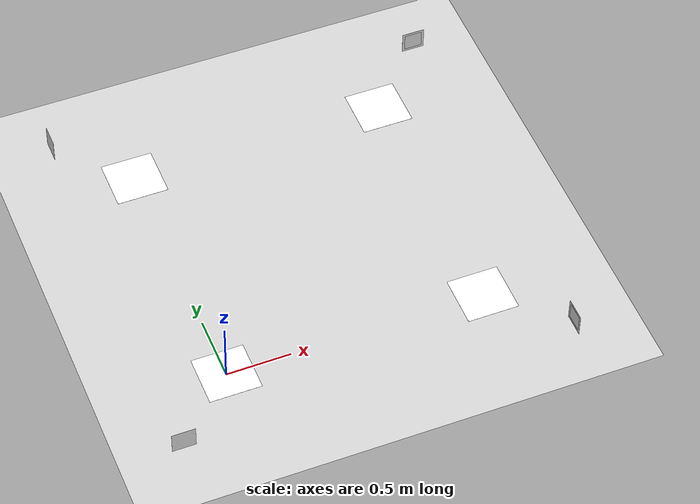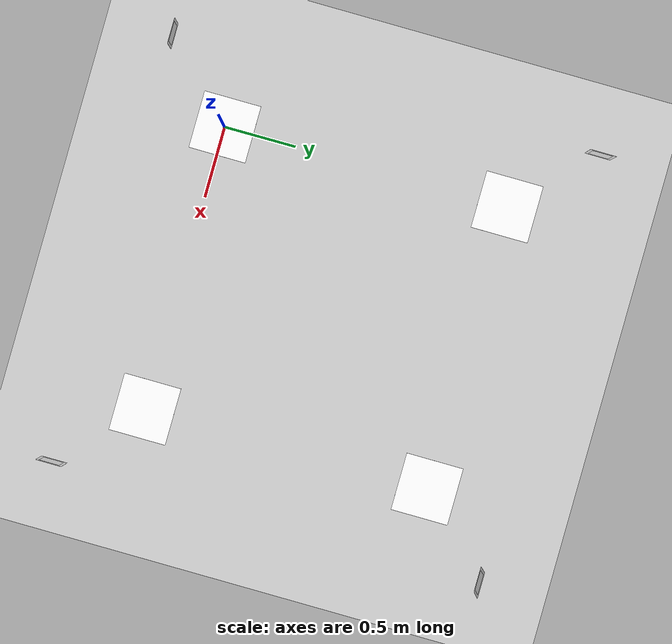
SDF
<sdf version="1.4">
  <world name="default">

    <physics name="1ms" type="ignored">
      <max_step_size>0.001</max_step_size>
      <real_time_factor>1.0</real_time_factor>
    </physics>
    <plugin
      filename="gz-sim-physics-system"
      name="gz::sim::systems::Physics">
    </plugin>
    <plugin
      filename="gz-sim-user-commands-system"
      name="gz::sim::systems::UserCommands">
    </plugin>
    <plugin
      filename="gz-sim-scene-broadcaster-system"
      name="gz::sim::systems::SceneBroadcaster">
    </plugin>

    <plugin
        filename="gz-sim-sensors-system"
        name="gz::sim::systems::Sensors">
        <render_engine>ogre2</render_engine>
    </plugin>

    <scene>
      <ambient>0 0 0 1</ambient>
      <background>0.7 0.7 0.7 1</background>
      <shadows>0</shadows>
    </scene>

    <!-- Arena lights -->
    <include>
      <uri>model://simple_light</uri>
    </include>

      <light name='point_light_0' type='point'>
        <pose frame=''>1 -1 1 0 0 0</pose>
        <diffuse>0.5 0.5 0.5 1</diffuse>
        <specular>0.3 0.3 0.3 1</specular>
        <attenuation>
          <range>20</range>
          <constant>0.5</constant>
          <linear>0.01</linear>
          <quadratic>0.001</quadratic>
        </attenuation>
        <cast_shadows>0</cast_shadows>
        <direction>-0.3 0.3 -1</direction>
    </light>

    <light name='point_light_1' type='point'>
      <pose frame=''>-1 1 1 0 0 0</pose>
      <diffuse>0.5 0.5 0.5 1</diffuse>
      <specular>0.3 0.3 0.3 1</specular>
      <attenuation>
        <range>20</range>
        <constant>0.5</constant>
        <linear>0.01</linear>
        <quadratic>0.001</quadratic>
      </attenuation>
      <cast_shadows>0</cast_shadows>
      <direction>0.3 -0.3 -1</direction>
    </light>

    <!-- An empty plane -->

        <!-- Puzzlebot wood plane -->
    <include>
      <uri>model://puzzlebot_base</uri>
    </include>

    <include>
      <name>marker_0</name>
      <uri>model://aruco_marker_0</uri>
      <pose>2.5 -0.5 0.091 0 0 3.141592654</pose>
    </include>

    <include>
      <name>marker_1</name>
      <uri>model://aruco_marker_1</uri>
      <pose>2.5 2.5 0.091 0 0 4.7123</pose>
    </include>

    <include>
      <name>marker_2</name>
      <uri>model://aruco_marker_2</uri>
      <pose>-0.5 2.5 0.091 0 0 0</pose>
    </include>

    <include>
      <name>marker_3</name>
      <uri>model://aruco_marker_3</uri>
      <pose>-0.5 -0.5 0.091 0 0 1.5708</pose>
    </include>

    <include>
      <name>goal_1</name>
      <uri>model://goal_marker_5</uri>
      <pose>0 0 0.01 0 0 0</pose>
    </include>

    <include>
      <name>goal_2</name>
      <uri>model://goal_marker_5</uri>
      <pose>2 0 0.01 0 0 0</pose>
    </include>

    <include>
      <name>goal_3</name>
      <uri>model://goal_marker_5</uri>
      <pose>2 2 0.01 0 0 0</pose>
    </include>

    <include>
      <name>goal_4</name>
      <uri>model://goal_marker_5</uri>
      <pose>0 2 0.01 0 0 0</pose>
    </include>

  </world>
</sdf>

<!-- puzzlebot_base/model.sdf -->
<sdf version="1.9">
    <model name="puzzlebot_base">
        <static>true</static>
        <link name="link">
            <collision name="collision">
                <geometry>
                    <plane>
                        <normal>0 0 1</normal>
                        <size>10.0 10.0</size>
                    </plane>
                </geometry>
                <surface>
                    <contact>
                        <collide_bitmask>0xffff</collide_bitmask>
                    </contact>
                    <friction>
                        <ode>
                            <mu>100</mu>
                            <mu2>50</mu2>
                        </ode>
                    </friction>
                </surface>
            </collision>

            <visual name="puzzlebot_visual">
                <pose>0 0 0.001 0 0 0</pose>
                <cast_shadows>false</cast_shadows>
                <geometry>
                    <plane>
                        <normal>0 0 1</normal>
                        <size>8.0 8.0</size>
                    </plane>
                </geometry>

                <material>
                    <ambient>0.8 0.8 0.8 1</ambient>
                    <diffuse>0.8 0.8 0.8 1</diffuse>
                    <specular>1 0.8 0.8 1</specular>
                    <pbr>
                        <metal>
                        <albedo_map>model://puzzlebot_base/materials/textures/puzzlebot_wood_6.png</albedo_map>
                        <normal_map>model://puzzlebot_base/materials/textures/puzzlebot_wood_6.png</normal_map>
                        </metal>
                    </pbr>
                </material>
            </visual>
        </link>
    </model>
</sdf>

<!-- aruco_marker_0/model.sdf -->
<sdf version="1.5">
    <model name='aruco_marker_1'>
    <pose>0 0 0 0 0 0</pose>
    <static>true</static>
        <link name='link'>
            <inertial>
                <pose>0 0 0 0 -0 0</pose>
                <mass>0.281</mass>
                <inertia>
                    <ixx>0.0006167</ixx>
                    <ixy>0</ixy>
                    <ixz>0</ixz>
                    <iyy>0.0006167</iyy>
                    <iyz>0</iyz>
                    <izz>0.0006167</izz>
                </inertia>
            </inertial>
            <collision name="collision">
                <geometry>
                    <box>
                        <size>0.001 0.18 0.18</size>
                    </box>
                </geometry>
                <surface>
                    <contact>
                        <ode>
                            <max_vel>1</max_vel>
                            <min_depth>0.001</min_depth>
                            <kp>1000000</kp>
                            <kd>10</kd>
                        </ode>
                    </contact>
                    <friction>
                        <ode>
                            <mu>1</mu>
                            <mu2>1</mu2>
                        </ode>
                    </friction>
                </surface>
            </collision>

            <visual name='box_visual'>
                <cast_shadows>0</cast_shadows>
                    <geometry>
                        <box>
                            <size>0.001 0.18 0.18</size>
                        </box>
                    </geometry>
                <material>
                    <ambient>1 1 1 1</ambient>
                    <diffuse>1 1 1 1</diffuse>
                    <specular>1 1 1 1</specular>
                    <emissive>0.6 0.6 0.6 1</emissive>
                </material>
            </visual>

            <visual name='aruco_visual1'>
                <cast_shadows>0</cast_shadows>
                <pose>0.00065 0.0 0.0 1.5708 0.0 1.5708</pose>
                <geometry>
                    <plane>
                        <normal>0 0 1</normal>
                        <size>0.14 0.14</size>
                    </plane>
                </geometry>
                <material>
                    <pbr>
                        <metal>
                            <albedo_map>model://aruco_marker_0/materials/textures/marker0.png</albedo_map>
                            <normal_map>model://aruco_marker_0/materials/textures/marker0.png</normal_map>
                        </metal>
                    </pbr>
                    <ambient>1 1 1 1</ambient>
                    <diffuse>1 1 1 1</diffuse>
                    <specular>1 1 1 1</specular>
                    <emissive>0.0 0.0 0.0 1</emissive>
                </material>
            </visual>

        </link>
    </model>
</sdf>

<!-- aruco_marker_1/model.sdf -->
<sdf version="1.5">

    <model name='aruco_marker_2'>
        <pose>0 0 0 0 0 0</pose>
        <static>true</static>
        <link name='link'>
            <inertial>
                <pose>0 0 0 0 -0 0</pose>
                <mass>0.281</mass>
                <inertia>
                    <ixx>0.0006167</ixx>
                    <ixy>0</ixy>
                    <ixz>0</ixz>
                    <iyy>0.0006167</iyy>
                    <iyz>0</iyz>
                    <izz>0.0006167</izz>
                </inertia>
            </inertial>
            <collision name="collision">
                <geometry>
                    <box>
                        <size>0.001 0.18 0.18</size>
                    </box>
                </geometry>
                <surface>
                    <contact>
                        <ode>
                            <max_vel>1</max_vel>
                            <min_depth>0.001</min_depth>
                            <kp>1000000</kp>
                            <kd>10</kd>
                        </ode>
                    </contact>
                    <friction>
                        <ode>
                            <mu>1</mu>
                            <mu2>1</mu2>
                        </ode>
                    </friction>
                </surface>
            </collision>

            <visual name='box_visual'>
                <cast_shadows>0</cast_shadows>
                    <geometry>
                        <box>
                            <size>0.001 0.18 0.18</size>
                        </box>
                    </geometry>
                    <material>
                    <ambient>1 1 1 1</ambient>
                    <diffuse>1 1 1 1</diffuse>
                    <specular>1 1 1 1</specular>
                    <emissive>0.6 0.6 0.6 1</emissive>
                </material>
            </visual>

            <visual name='aruco_visual1'>
                <cast_shadows>0</cast_shadows>
                <pose>0.00065 0.0 0.0 1.5708 0.0 1.5708</pose>
                <geometry>
                    <plane>
                        <normal>0 0 1</normal>
                        <size>0.14 0.14</size>
                    </plane>
                </geometry>
                <material>
                    <pbr>
                        <metal>
                            <albedo_map>model://aruco_marker_1/materials/textures/marker1.png</albedo_map>
                            <normal_map>model://aruco_marker_1/materials/textures/marker1.png</normal_map>
                        </metal>
                    </pbr>
                    <ambient>1 1 1 1</ambient>
                    <diffuse>1 1 1 1</diffuse>
                    <specular>1 1 1 1</specular>
                    <emissive>0.0 0.0 0.0 1</emissive>
                </material>
            </visual>

        </link>
    </model>
</sdf>

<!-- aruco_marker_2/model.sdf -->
<sdf version="1.5">

    <model name='aruco_marker_3'>
        <pose>0 0 0 0 0 0</pose>
        <static>true</static>
        <link name='link'>
            <inertial>
                <pose>0 0 0 0 -0 0</pose>
                <mass>0.281</mass>
                <inertia>
                    <ixx>0.0006167</ixx>
                    <ixy>0</ixy>
                    <ixz>0</ixz>
                    <iyy>0.0006167</iyy>
                    <iyz>0</iyz>
                    <izz>0.0006167</izz>
                </inertia>
            </inertial>
            <collision name="collision">
                <geometry>
                    <box>
                        <size>0.001 0.18 0.18</size>
                    </box>
                </geometry>
                <surface>
                    <contact>
                        <ode>
                            <max_vel>1</max_vel>
                            <min_depth>0.001</min_depth>
                            <kp>1000000</kp>
                            <kd>10</kd>
                        </ode>
                    </contact>
                    <friction>
                        <ode>
                            <mu>1</mu>
                            <mu2>1</mu2>
                        </ode>
                    </friction>
                </surface>
            </collision>

            <visual name='box_visual'>
                <cast_shadows>0</cast_shadows>
                    <geometry>
                        <box>
                            <size>0.001 0.18 0.18</size>
                        </box>
                    </geometry>
                <material>
                    <ambient>1 1 1 1</ambient>
                    <diffuse>1 1 1 1</diffuse>
                    <specular>1 1 1 1</specular>
                    <emissive>0.6 0.6 0.6 1</emissive>
                </material>
            </visual>

            <visual name='aruco_visual1'>
                <cast_shadows>0</cast_shadows>
                <pose>0.00065 0.0 0.0 1.5708 0.0 1.5708</pose>
                <geometry>
                    <plane>
                        <normal>0 0 1</normal>
                        <size>0.14 0.14</size>
                    </plane>
                </geometry>
                <material>
                    <pbr>
                        <metal>
                            <albedo_map>model://aruco_marker_2/materials/textures/marker2.png</albedo_map>
                            <normal_map>model://aruco_marker_2/materials/textures/marker2.png</normal_map>
                        </metal>
                    </pbr>
                    <ambient>1 1 1 1</ambient>
                    <diffuse>1 1 1 1</diffuse>
                    <specular>1 1 1 1</specular>
                    <emissive>0.0 0.0 0.0 1</emissive>
                </material>
            </visual>

        </link>
    </model>
</sdf>

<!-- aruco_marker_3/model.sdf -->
<sdf version="1.5">

    <model name='aruco_marker_4'>
        <pose>0 0 0 0 0 0</pose>
        <static>true</static>
        <link name='link'>
            <inertial>
                <pose>0 0 0 0 -0 0</pose>
                <mass>0.281</mass>
                <inertia>
                    <ixx>0.0006167</ixx>
                    <ixy>0</ixy>
                    <ixz>0</ixz>
                    <iyy>0.0006167</iyy>
                    <iyz>0</iyz>
                    <izz>0.0006167</izz>
                </inertia>
            </inertial>
            <collision name="collision">
                <geometry>
                    <box>
                        <size>0.001 0.18 0.18</size>
                    </box>
                </geometry>
                <surface>
                    <contact>
                        <ode>
                            <max_vel>1</max_vel>
                            <min_depth>0.001</min_depth>
                            <kp>1000000</kp>
                            <kd>10</kd>
                        </ode>
                    </contact>
                    <friction>
                        <ode>
                            <mu>1</mu>
                            <mu2>1</mu2>
                        </ode>
                    </friction>
                </surface>
            </collision>

            <visual name='box_visual'>
                <cast_shadows>0</cast_shadows>
                    <geometry>
                        <box>
                            <size>0.001 0.18 0.18</size>
                        </box>
                    </geometry>
                <material>
                    <ambient>1 1 1 1</ambient>
                    <diffuse>1 1 1 1</diffuse>
                    <specular>1 1 1 1</specular>
                    <emissive>0.6 0.6 0.6 1</emissive>
                </material>
            </visual>

            <visual name='aruco_visual1'>
                <cast_shadows>0</cast_shadows>
                <pose>0.00065 0.0 0.0 1.5708 0.0 1.5708</pose>
                <geometry>
                    <plane>
                        <normal>0 0 1</normal>
                        <size>0.14 0.14</size>
                    </plane>
                </geometry>
                <material>
                    <pbr>
                        <metal>
                            <albedo_map>model://aruco_marker_3/materials/textures/marker3.png</albedo_map>
                            <normal_map>model://aruco_marker_3/materials/textures/marker3.png</normal_map>
                        </metal>
                    </pbr>
                    <ambient>1 1 1 1</ambient>
                    <diffuse>1 1 1 1</diffuse>
                    <specular>1 1 1 1</specular>
                    <emissive>0.0 0.0 0.0 1</emissive>
                </material>
            </visual>

        </link>
    </model>
</sdf>

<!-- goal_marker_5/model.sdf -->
<sdf version="1.5">
        <model name="goal_marker_5">
            <static>true</static>
                <link name="link">
                    <pose>0 0 0 0 0 0</pose>
                    <visual name="visual">
                        <cast_shadows>false</cast_shadows>
                        <geometry>
                            <plane>
                                    <normal>0 0 1</normal>
                                    <size>0.4 0.4</size>
                            </plane>
                        </geometry>
                        <material>
                            <ambient>1 1 1 1</ambient>
                            <diffuse>1 1 1 1</diffuse>
                            <specular>1 1 1 1</specular>
                            <pbr>
                                <metal>
                                <albedo_map>model://goal_marker_5/materials/textures/mcr2_goal_5.png</albedo_map>
                                <normal_map>model://goal_marker_5/materials/textures/mcr2_goal_5.png</normal_map>
                                </metal>
                            </pbr>
                        </material>
                    </visual>
                </link>
        </model>
    </sdf>
